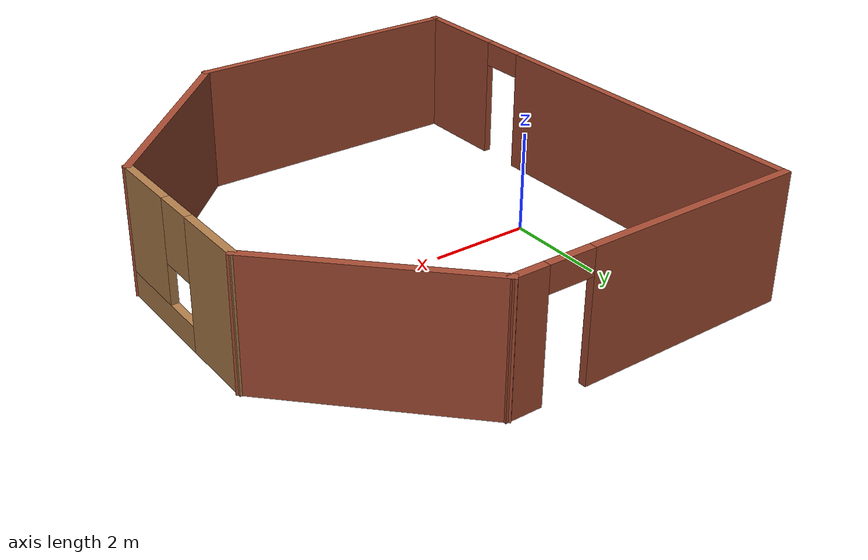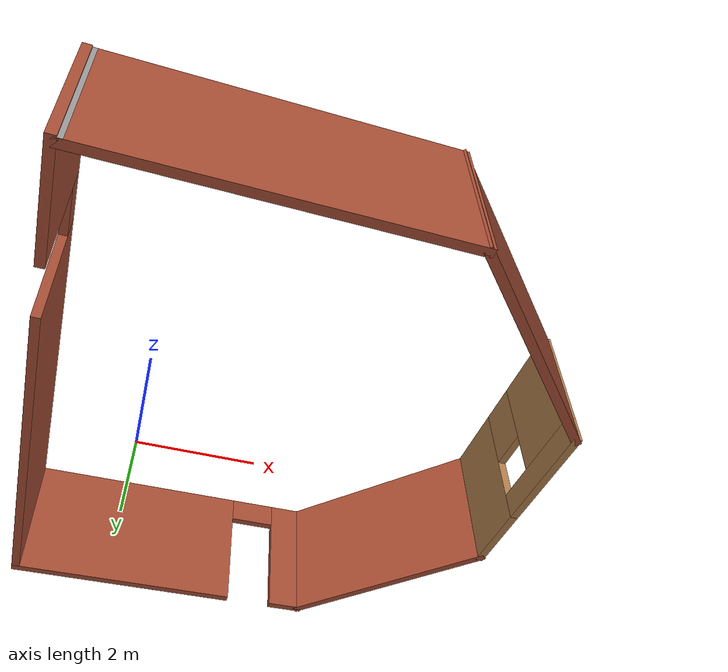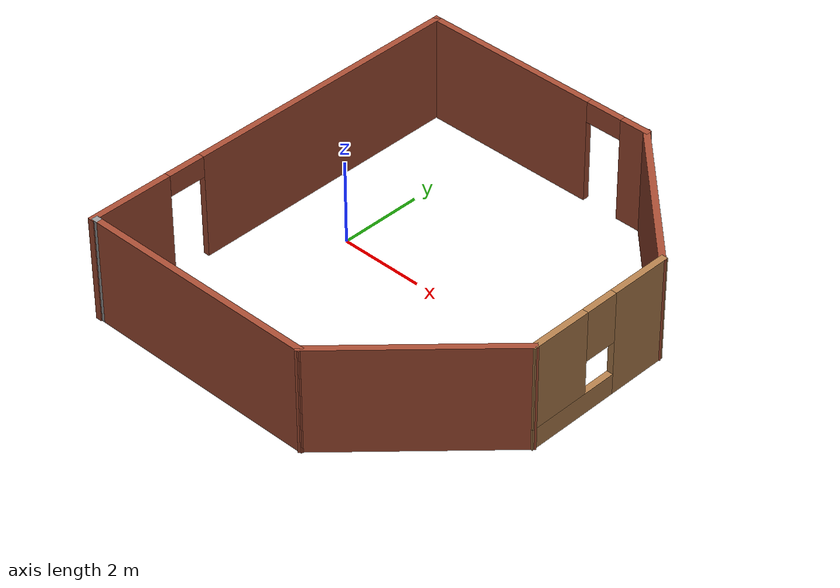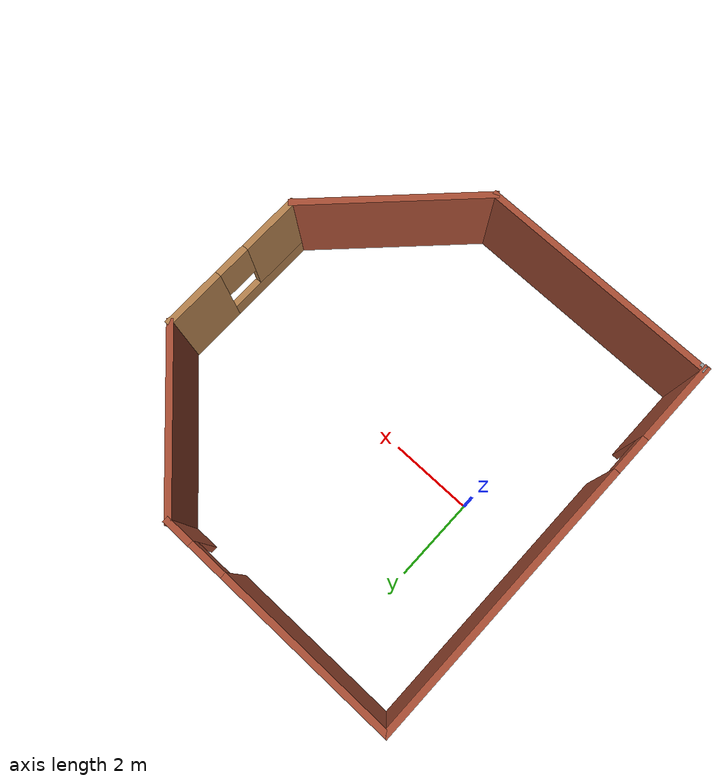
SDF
<?xml version='1.0'?>
<sdf version='1.7'>
  <model name='first_world'>
    <pose>2.62808 -0.301169 0 0 -0 0</pose>
    <link name='Wall_10'>
      <pose>4.35904 0.088389 0 0 -0 -1.5708</pose>
      <visual name='Wall_10_Visual_0'>
        <pose>-1.13487 0 1.25 0 -0 0</pose>
        <geometry>
          <box>
            <size>1.48027 0.15 2.5</size>
          </box>
        </geometry>
        <material>
          <script>
            <uri>file://media/materials/scripts/gazebo.material</uri>
            <name>Gazebo/Wood</name>
          </script>
          <ambient>1 1 1 1</ambient>
        </material>
        <meta>
          <layer>0</layer>
        </meta>
      </visual>
      <collision name='Wall_10_Collision_0'>
        <geometry>
          <box>
            <size>1.48027 0.15 2.5</size>
          </box>
        </geometry>
        <pose>-1.13487 0 1.25 0 -0 0</pose>
      </collision>
      <visual name='Wall_10_Visual_1'>
        <pose>0.740134 0 0.25 0 -0 0</pose>
        <geometry>
          <box>
            <size>2.26973 0.15 0.5</size>
          </box>
        </geometry>
        <material>
          <script>
            <uri>file://media/materials/scripts/gazebo.material</uri>
            <name>Gazebo/Wood</name>
          </script>
          <ambient>1 1 1 1</ambient>
        </material>
        <meta>
          <layer>0</layer>
        </meta>
      </visual>
      <collision name='Wall_10_Collision_1'>
        <geometry>
          <box>
            <size>2.26973 0.15 0.5</size>
          </box>
        </geometry>
        <pose>0.740134 0 0.25 0 -0 0</pose>
      </collision>
      <visual name='Wall_10_Visual_2'>
        <pose>1.14013 0 1.5 0 -0 0</pose>
        <geometry>
          <box>
            <size>1.46973 0.15 2</size>
          </box>
        </geometry>
        <material>
          <script>
            <uri>file://media/materials/scripts/gazebo.material</uri>
            <name>Gazebo/Wood</name>
          </script>
          <ambient>1 1 1 1</ambient>
        </material>
        <meta>
          <layer>0</layer>
        </meta>
      </visual>
      <collision name='Wall_10_Collision_2'>
        <geometry>
          <box>
            <size>1.46973 0.15 2</size>
          </box>
        </geometry>
        <pose>1.14013 0 1.5 0 -0 0</pose>
      </collision>
      <visual name='Wall_10_Visual_3'>
        <pose>0.005268 0 1.9 0 -0 0</pose>
        <geometry>
          <box>
            <size>0.8 0.15 1.2</size>
          </box>
        </geometry>
        <material>
          <script>
            <uri>file://media/materials/scripts/gazebo.material</uri>
            <name>Gazebo/Wood</name>
          </script>
          <ambient>1 1 1 1</ambient>
        </material>
        <meta>
          <layer>0</layer>
        </meta>
      </visual>
      <collision name='Wall_10_Collision_3'>
        <geometry>
          <box>
            <size>0.8 0.15 1.2</size>
          </box>
        </geometry>
        <pose>0.005268 0 1.9 0 -0 0</pose>
      </collision>
    </link>
    <link name='Wall_11'>
      <collision name='Wall_11_Collision'>
        <geometry>
          <box>
            <size>4.5 0.15 2.5</size>
          </box>
        </geometry>
        <pose>0 0 1.25 0 -0 0</pose>
      </collision>
      <visual name='Wall_11_Visual'>
        <pose>0 0 1.25 0 -0 0</pose>
        <geometry>
          <box>
            <size>4.5 0.15 2.5</size>
          </box>
        </geometry>
        <material>
          <script>
            <uri>file://media/materials/scripts/gazebo.material</uri>
            <name>Gazebo/Bricks</name>
          </script>
          <ambient>1 1 1 1</ambient>
        </material>
        <meta>
          <layer>0</layer>
        </meta>
      </visual>
      <pose>2.82108 -3.24957 0 0 -0 -2.35619</pose>
    </link>
    <link name='Wall_12'>
      <collision name='Wall_12_Collision'>
        <geometry>
          <box>
            <size>5.75 0.15 2.5</size>
          </box>
        </geometry>
        <pose>0 0 1.25 0 -0 0</pose>
      </collision>
      <visual name='Wall_12_Visual'>
        <pose>0 0 1.25 0 -0 0</pose>
        <geometry>
          <box>
            <size>5.75 0.15 2.5</size>
          </box>
        </geometry>
        <material>
          <script>
            <uri>file://media/materials/scripts/gazebo.material</uri>
            <name>Gazebo/Bricks</name>
          </script>
          <ambient>1 1 1 1</ambient>
        </material>
        <meta>
          <layer>0</layer>
        </meta>
      </visual>
      <pose>-1.51688 -4.78753 0 0 -0 3.14159</pose>
    </link>
    <link name='Wall_13'>
      <collision name='Wall_13_Collision'>
        <geometry>
          <box>
            <size>0.15 0.15 2.5</size>
          </box>
        </geometry>
        <pose>0 0 1.25 0 -0 0</pose>
      </collision>
      <visual name='Wall_13_Visual'>
        <pose>0 0 1.25 0 -0 0</pose>
        <geometry>
          <box>
            <size>0.15 0.15 2.5</size>
          </box>
        </geometry>
        <material>
          <script>
            <uri>file://media/materials/scripts/gazebo.material</uri>
            <name>Gazebo/Grey</name>
          </script>
          <ambient>1 1 1 1</ambient>
        </material>
        <meta>
          <layer>0</layer>
        </meta>
      </visual>
      <pose>-4.31688 -4.78753 0 0 -0 0</pose>
    </link>
    <link name='Wall_7'>
      <pose>-4.3901 -0.012474 0 0 -0 1.5708</pose>
      <visual name='Wall_7_Visual_0'>
        <pose>-3.86951 0 1.25 0 -0 0</pose>
        <geometry>
          <box>
            <size>2.01098 0.15 2.5</size>
          </box>
        </geometry>
        <material>
          <script>
            <uri>file://media/materials/scripts/gazebo.material</uri>
            <name>Gazebo/Bricks</name>
          </script>
          <ambient>1 1 1 1</ambient>
        </material>
        <meta>
          <layer>0</layer>
        </meta>
      </visual>
      <collision name='Wall_7_Collision_0'>
        <geometry>
          <box>
            <size>2.01098 0.15 2.5</size>
          </box>
        </geometry>
        <pose>-3.86951 0 1.25 0 -0 0</pose>
      </collision>
      <visual name='Wall_7_Visual_1'>
        <pose>1.45549 0 1.25 0 -0 0</pose>
        <geometry>
          <box>
            <size>6.83902 0.15 2.5</size>
          </box>
        </geometry>
        <material>
          <script>
            <uri>file://media/materials/scripts/gazebo.material</uri>
            <name>Gazebo/Bricks</name>
          </script>
          <ambient>1 1 1 1</ambient>
        </material>
        <meta>
          <layer>0</layer>
        </meta>
      </visual>
      <collision name='Wall_7_Collision_1'>
        <geometry>
          <box>
            <size>6.83902 0.15 2.5</size>
          </box>
        </geometry>
        <pose>1.45549 0 1.25 0 -0 0</pose>
      </collision>
      <visual name='Wall_7_Visual_2'>
        <pose>-2.41402 0 2.25 0 -0 0</pose>
        <geometry>
          <box>
            <size>0.9 0.15 0.5</size>
          </box>
        </geometry>
        <material>
          <script>
            <uri>file://media/materials/scripts/gazebo.material</uri>
            <name>Gazebo/Bricks</name>
          </script>
          <ambient>1 1 1 1</ambient>
        </material>
        <meta>
          <layer>0</layer>
        </meta>
      </visual>
      <collision name='Wall_7_Collision_2'>
        <geometry>
          <box>
            <size>0.9 0.15 0.5</size>
          </box>
        </geometry>
        <pose>-2.41402 0 2.25 0 -0 0</pose>
      </collision>
    </link>
    <link name='Wall_8'>
      <pose>-1.4651 4.78753 0 0 -0 0</pose>
      <visual name='Wall_8_Visual_0'>
        <pose>-0.804652 0 1.25 0 -0 0</pose>
        <geometry>
          <box>
            <size>4.3907 0.15 2.5</size>
          </box>
        </geometry>
        <material>
          <script>
            <uri>file://media/materials/scripts/gazebo.material</uri>
            <name>Gazebo/Bricks</name>
          </script>
          <ambient>1 1 1 1</ambient>
        </material>
        <meta>
          <layer>0</layer>
        </meta>
      </visual>
      <collision name='Wall_8_Collision_0'>
        <geometry>
          <box>
            <size>4.3907 0.15 2.5</size>
          </box>
        </geometry>
        <pose>-0.804652 0 1.25 0 -0 0</pose>
      </collision>
      <visual name='Wall_8_Visual_1'>
        <pose>2.64535 0 1.25 0 -0 0</pose>
        <geometry>
          <box>
            <size>0.709304 0.15 2.5</size>
          </box>
        </geometry>
        <material>
          <script>
            <uri>file://media/materials/scripts/gazebo.material</uri>
            <name>Gazebo/Bricks</name>
          </script>
          <ambient>1 1 1 1</ambient>
        </material>
        <meta>
          <layer>0</layer>
        </meta>
      </visual>
      <collision name='Wall_8_Collision_1'>
        <geometry>
          <box>
            <size>0.709304 0.15 2.5</size>
          </box>
        </geometry>
        <pose>2.64535 0 1.25 0 -0 0</pose>
      </collision>
      <visual name='Wall_8_Visual_2'>
        <pose>1.8407 0 2.25 0 -0 0</pose>
        <geometry>
          <box>
            <size>0.9 0.15 0.5</size>
          </box>
        </geometry>
        <material>
          <script>
            <uri>file://media/materials/scripts/gazebo.material</uri>
            <name>Gazebo/Bricks</name>
          </script>
          <ambient>1 1 1 1</ambient>
        </material>
        <meta>
          <layer>0</layer>
        </meta>
      </visual>
      <collision name='Wall_8_Collision_2'>
        <geometry>
          <box>
            <size>0.9 0.15 0.5</size>
          </box>
        </geometry>
        <pose>1.8407 0 2.25 0 -0 0</pose>
      </collision>
    </link>
    <link name='Wall_9'>
      <collision name='Wall_9_Collision'>
        <geometry>
          <box>
            <size>4.25 0.15 2.5</size>
          </box>
        </geometry>
        <pose>0 0 1.25 0 -0 0</pose>
      </collision>
      <visual name='Wall_9_Visual'>
        <pose>0 0 1.25 0 -0 0</pose>
        <geometry>
          <box>
            <size>4.25 0.15 2.5</size>
          </box>
        </geometry>
        <material>
          <script>
            <uri>file://media/materials/scripts/gazebo.material</uri>
            <name>Gazebo/Bricks</name>
          </script>
          <ambient>1 1 1 1</ambient>
        </material>
        <meta>
          <layer>0</layer>
        </meta>
      </visual>
      <pose>2.90947 3.33796 0 0 -0 -0.785398</pose>
    </link>
    <static>1</static>
  </model>
</sdf>
